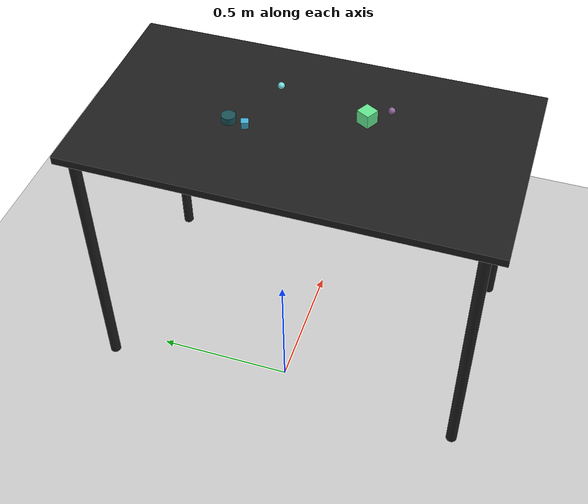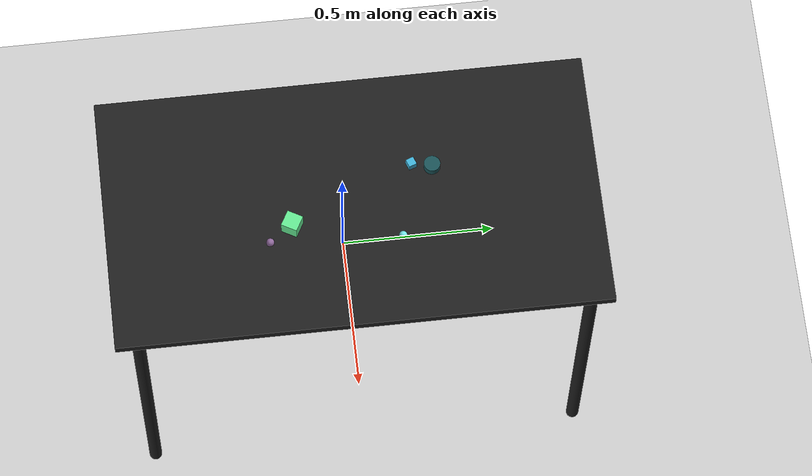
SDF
<?xml version="1.0" ?>
<sdf version="1.6">
  <world name="arm_world">
    <plugin filename="gz-sim-physics-system" name="gz::sim::systems::Physics">
      <engine>
        <filename>libgz-physics-bullet-featherstone-plugin.so</filename>
      </engine>
    </plugin>
    <plugin filename="gz-sim-user-commands-system" name="gz::sim::systems::UserCommands"/>
    <plugin filename="gz-sim-scene-broadcaster-system" name="gz::sim::systems::SceneBroadcaster"/>
    <plugin filename="gz-sim-sensors-system" name="gz::sim::systems::Sensors">
      <render_engine>ogre2</render_engine>
    </plugin>
    <gravity>0.0 0.0 -9.8</gravity>
    <scene>
      <shadows>false</shadows>
    </scene>
    <gui>
      <camera name="user_camera">
        <pose>0.75 -0.75 1.4 0 0.29 2.21</pose>
      </camera>
    </gui>
    <include>
      <uri>https://fuel.gazebosim.org/1.0/OpenRobotics/models/Sun</uri>
    </include>
    <model name="table">
      <static>true</static>
      <include>
        <uri>model://table</uri>
      </include>
      <pose>0.29 0 0 0 0 1.5708</pose>
    </model>
    <model name="ground_plane">
      <static>true</static>
      <link name="link">
        <collision name="collision">
          <geometry>
            <plane>
              <normal>0 0 1</normal>
            </plane>
          </geometry>
          <surface>
            <friction>
              <ode>
                <mu>1.0</mu>
                <mu2>1.0</mu2>
              </ode>
            </friction>
          </surface>
        </collision>
        <visual name="visual">
          <geometry>
            <plane>
              <normal>0 0 1</normal>
              <size>100 100</size>
            </plane>
          </geometry>
          <material>
            <ambient>0.8 0.8 0.8 1</ambient>
            <diffuse>0.8 0.8 0.8 1</diffuse>
            <specular>0.8 0.8 0.8 1</specular>
          </material>
        </visual>
      </link>
    </model>
    <model name="sphere_s_0">
      <pose>0.414 -0.259 1.05 0 0 2.75</pose>
      <link name="sphere_s_0_link">
        <collision name="sphere_s_0_collision">
          <geometry>
            <sphere>
              <radius>0.0125</radius>
            </sphere>
          </geometry>
        </collision>
        <visual name="sphere_s_0_visual">
          <geometry>
            <sphere>
              <radius>0.0125</radius>
            </sphere>
          </geometry>
          <material>
            <ambient>0.56 0.41 0.61 1</ambient>
            <diffuse>0.56 0.41 0.61 1</diffuse>
          </material>
        </visual>
        <velocity_decay>
          <linear>1</linear>
          <angular>1</angular>
        </velocity_decay>
      </link>
    </model>
    <model name="cube_m_1">
      <pose>0.361 -0.188 1.05 0 0 5.78</pose>
      <link name="cube_m_1_link">
        <collision name="cube_m_1_collision">
          <geometry>
            <box>
              <size>0.05 0.05 0.05</size>
            </box>
          </geometry>
        </collision>
        <visual name="cube_m_1_visual">
          <geometry>
            <box>
              <size>0.05 0.05 0.05</size>
            </box>
          </geometry>
          <material>
            <ambient>0.39 0.91 0.57 1</ambient>
            <diffuse>0.39 0.91 0.57 1</diffuse>
          </material>
        </visual>
        <velocity_decay>
          <linear>1</linear>
          <angular>1</angular>
        </velocity_decay>
      </link>
    </model>
    <model name="cylinder_m_2">
      <pose>0.214 0.251 1.05 0 0 0.48</pose>
      <link name="cylinder_m_2_link">
        <collision name="cylinder_m_2_collision">
          <geometry>
            <cylinder>
              <radius>0.025</radius>
              <length>0.025</length>
            </cylinder>
          </geometry>
        </collision>
        <visual name="cylinder_m_2_visual">
          <geometry>
            <cylinder>
              <radius>0.025</radius>
              <length>0.025</length>
            </cylinder>
          </geometry>
          <material>
            <ambient>0.1 0.32 0.34 1</ambient>
            <diffuse>0.1 0.32 0.34 1</diffuse>
          </material>
        </visual>
        <velocity_decay>
          <linear>1</linear>
          <angular>1</angular>
        </velocity_decay>
      </link>
    </model>
    <model name="cube_s_3">
      <pose>0.202 0.189 1.05 0 0 1.93</pose>
      <link name="cube_s_3_link">
        <collision name="cube_s_3_collision">
          <geometry>
            <box>
              <size>0.025 0.025 0.025</size>
            </box>
          </geometry>
        </collision>
        <visual name="cube_s_3_visual">
          <geometry>
            <box>
              <size>0.025 0.025 0.025</size>
            </box>
          </geometry>
          <material>
            <ambient>0.25 0.7 0.85 1</ambient>
            <diffuse>0.25 0.7 0.85 1</diffuse>
          </material>
        </visual>
        <velocity_decay>
          <linear>1</linear>
          <angular>1</angular>
        </velocity_decay>
      </link>
    </model>
    <model name="sphere_s_4">
      <pose>0.432 0.139 1.05 0 0 6.25</pose>
      <link name="sphere_s_4_link">
        <collision name="sphere_s_4_collision">
          <geometry>
            <sphere>
              <radius>0.0125</radius>
            </sphere>
          </geometry>
        </collision>
        <visual name="sphere_s_4_visual">
          <geometry>
            <sphere>
              <radius>0.0125</radius>
            </sphere>
          </geometry>
          <material>
            <ambient>0.46 0.9 0.91 1</ambient>
            <diffuse>0.46 0.9 0.91 1</diffuse>
          </material>
        </visual>
        <velocity_decay>
          <linear>1</linear>
          <angular>1</angular>
        </velocity_decay>
      </link>
    </model>
  </world>
</sdf>

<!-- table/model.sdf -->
<sdf version="1.5">
  <model name="table">
    <static>true</static>
    <link name="link">
      <collision name="surface">
        <pose>0 0 1.0 0 0 0</pose>
        <geometry>
          <box>
            <size>1.5 0.8 0.03</size>
          </box>
        </geometry>
        <surface>
          <friction>
            <ode>
              <mu>0.6</mu>
              <mu2>0.6</mu2>
            </ode>
          </friction>
        </surface>
      </collision>
      <visual name="surface">
        <pose>0 0 1.0 0 0 0</pose>
        <geometry>
          <box>
            <size>1.5 0.8 0.03</size>
          </box>
        </geometry>
        <material>
          <script>
            <uri>file://media/materials/scripts/gazebo.material</uri>
            <name>Gazebo/Black</name>
          </script>
        </material>
      </visual>
      <collision name="front_left_leg">
        <pose>0.68 0.38 0.5 0 0 0</pose>
        <geometry>
          <cylinder>
            <radius>0.02</radius>
            <length>1.0</length>
          </cylinder>
        </geometry>
      </collision>
      <visual name="front_left_leg">
        <pose>0.68 0.38 0.5 0 0 0</pose>
        <geometry>
          <cylinder>
            <radius>0.02</radius>
            <length>1.0</length>
          </cylinder>
        </geometry>
        <material>
          <script>
            <uri>file://media/materials/scripts/gazebo.material</uri>
            <name>Gazebo/Black</name>
          </script>
        </material>
      </visual>
      <collision name="front_right_leg">
        <pose>0.68 -0.38 0.5 0 0 0</pose>
        <geometry>
          <cylinder>
            <radius>0.02</radius>
            <length>1.0</length>
          </cylinder>
        </geometry>
      </collision>
      <visual name="front_right_leg">
        <pose>0.68 -0.38 0.5 0 0 0</pose>
        <geometry>
          <cylinder>
            <radius>0.02</radius>
            <length>1.0</length>
          </cylinder>
        </geometry>
        <material>
          <script>
            <uri>file://media/materials/scripts/gazebo.material</uri>
            <name>Gazebo/Black</name>
          </script>
        </material>
      </visual>
      <collision name="back_right_leg">
        <pose>-0.68 -0.38 0.5 0 0 0</pose>
        <geometry>
          <cylinder>
            <radius>0.02</radius>
            <length>1.0</length>
          </cylinder>
        </geometry>
      </collision>
      <visual name="back_right_leg">
        <pose>-0.68 -0.38 0.5 0 0 0</pose>
        <geometry>
          <cylinder>
            <radius>0.02</radius>
            <length>1.0</length>
          </cylinder>
        </geometry>
        <material>
          <script>
            <uri>file://media/materials/scripts/gazebo.material</uri>
            <name>Gazebo/Black</name>
          </script>
        </material>
      </visual>
      <collision name="back_left_leg">
        <pose>-0.68 0.38 0.5 0 0 0</pose>
        <geometry>
          <cylinder>
            <radius>0.02</radius>
            <length>1.0</length>
          </cylinder>
        </geometry>
      </collision>
      <visual name="back_left_leg">
        <pose>-0.68 0.38 0.5 0 0 0</pose>
        <geometry>
          <cylinder>
            <radius>0.02</radius>
            <length>1.0</length>
          </cylinder>
        </geometry>
        <material>
          <script>
            <uri>file://media/materials/scripts/gazebo.material</uri>
            <name>Gazebo/Black</name>
          </script>
        </material>
      </visual>
    </link>
  </model>
</sdf>
